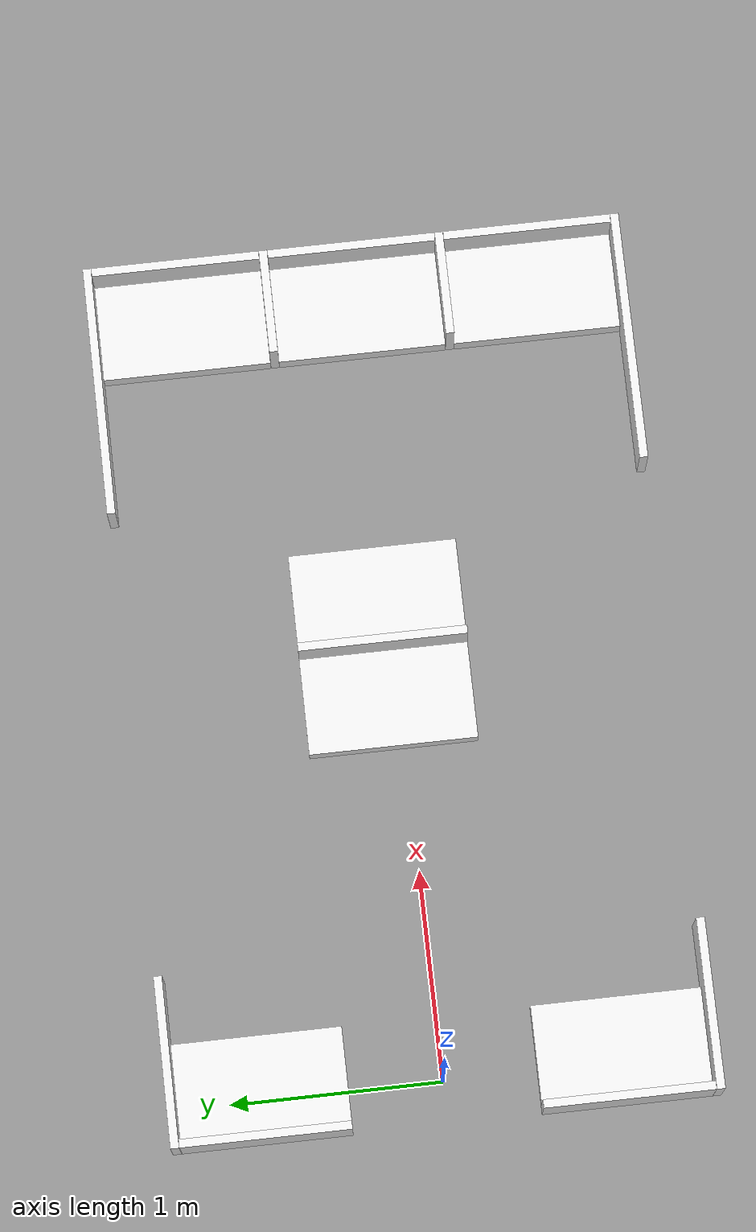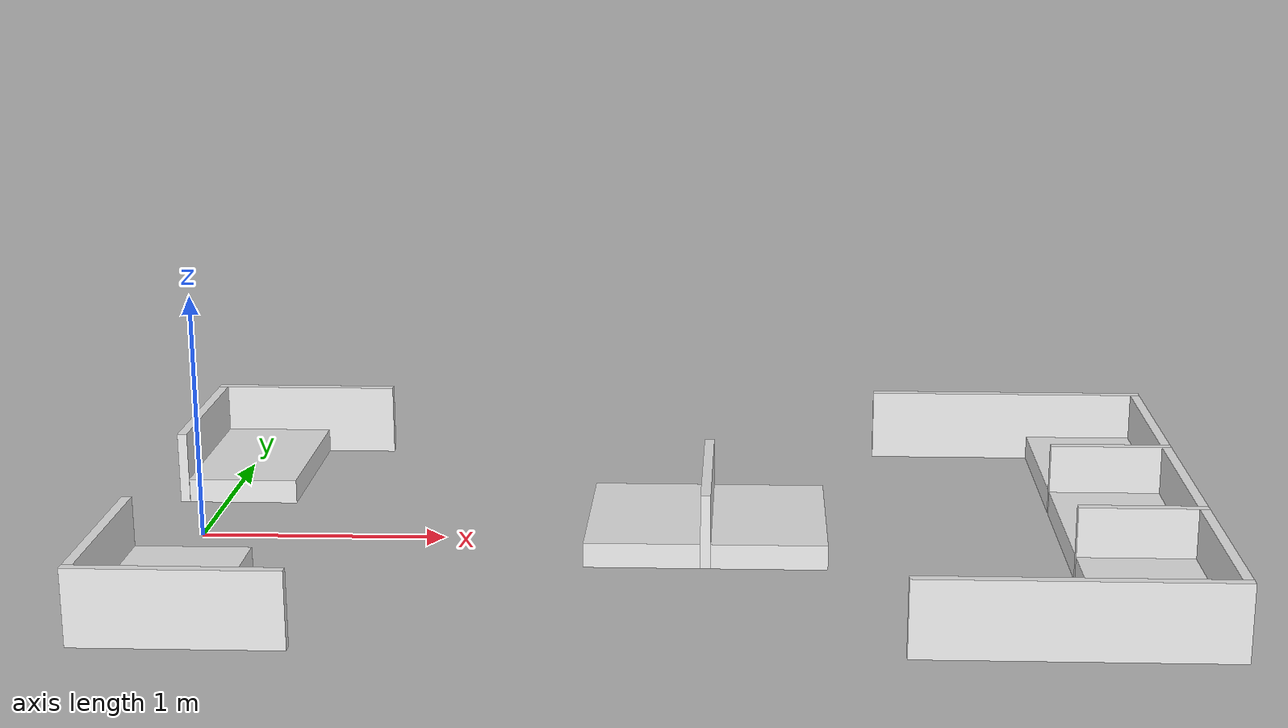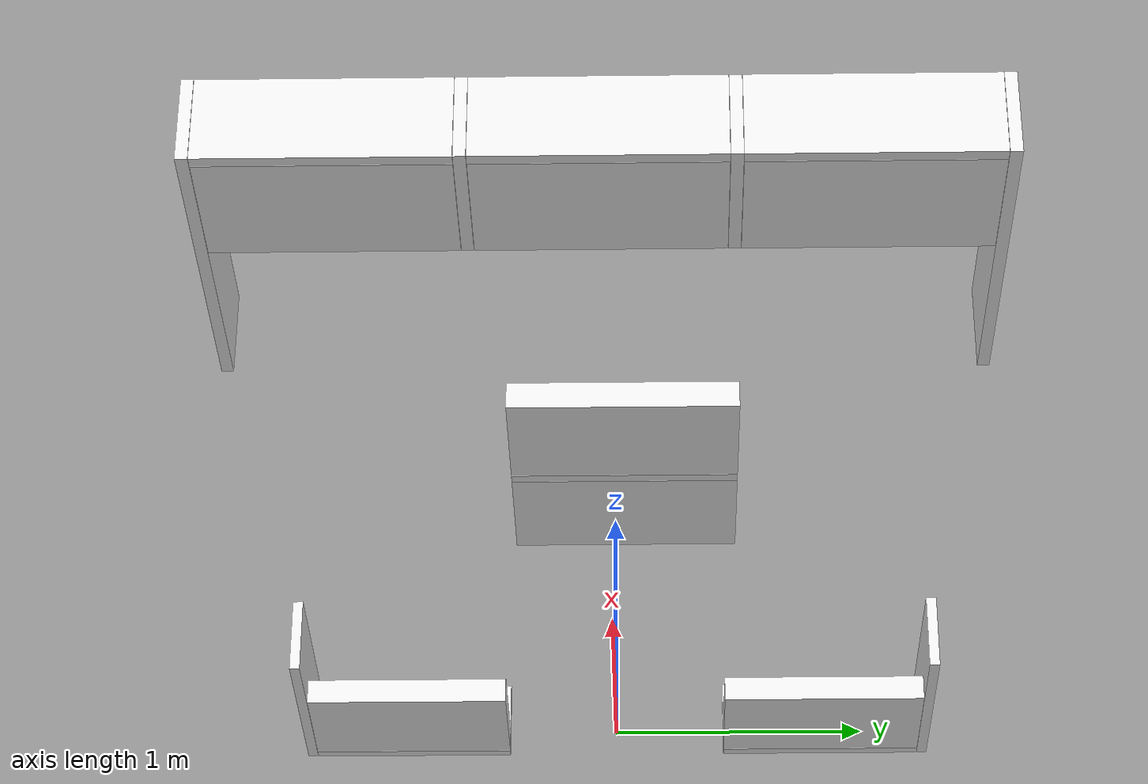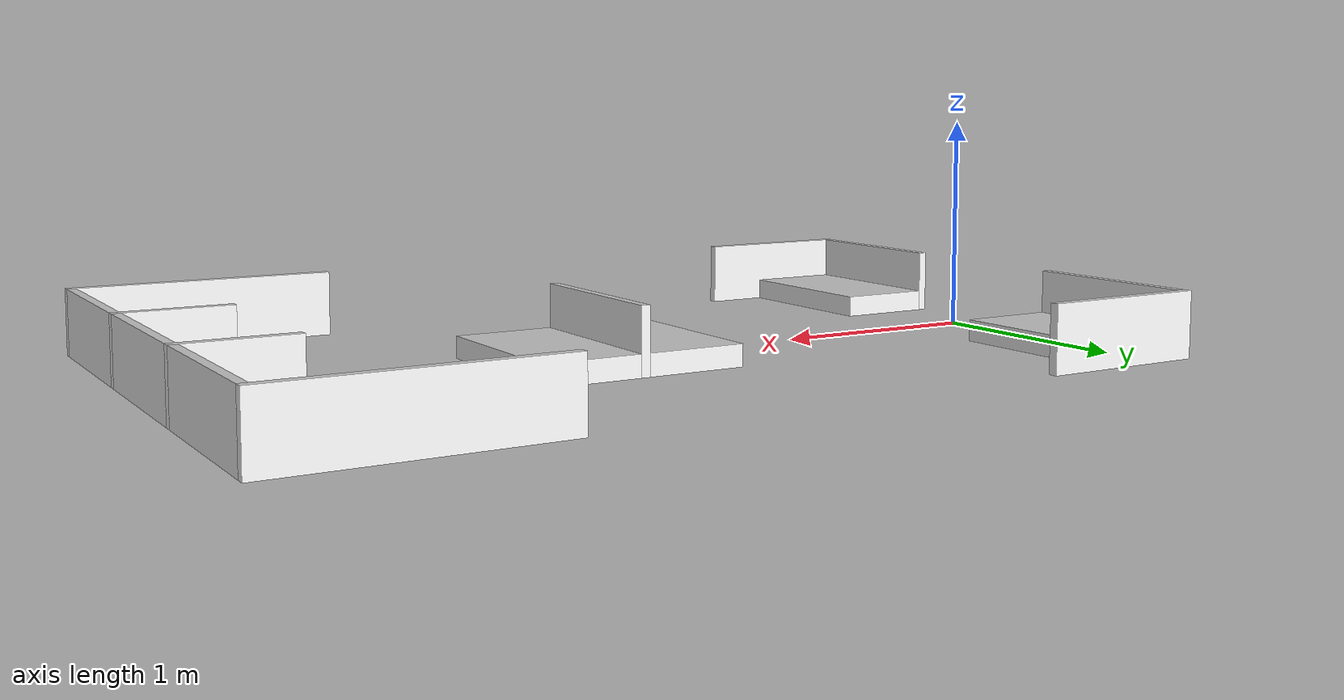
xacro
<?xml version="1.0"?>

<robot name="brsu-c025-config2">

  	<link name="origin">
    		<inertial>
      			<origin xyz="0 0 0" />
      			<mass value="0" />
      			<inertia  ixx="0" ixy="0"  ixz="0"  iyy="0"  iyz="0"  izz="0" />
    		</inertial>
    		<visual>
      			<origin xyz="0 0 0" />
      			<geometry>
					<box size="0 0 0" />
      			</geometry>
    		</visual>
			<collision>
      			<origin xyz="0 0 0"/>
				<geometry>
					<box size="0 0 0"/>
				</geometry>
    		</collision>
  	</link>

	<joint name="join1" type="fixed">
    		<origin xyz="3.983 0 0.15" rpy="0 0 0"/>
    		<parent link="origin"/>
    		<child link="wall_1"/>
  	</joint>

  	<link name="wall_1">
    		<inertial>
      			<origin xyz="0 0 0" />
      			<mass value="10.0" />
      			<inertia  ixx="1.0" ixy="0"  ixz="0"  iyy="1.0"  iyz="0"  izz="1.0" />
    		</inertial>
    		<visual>
      			<origin xyz="0 0 0"/>
      			<geometry>
					<box size="0.04 0.8 0.3" /> <!--wall 80, width = 4 cm, lenght = 80 cm, height = 30 cm-->
      			</geometry>
    		</visual>
			<collision>
      			<origin xyz="0 0 0"/>
				<geometry>
					<box size="0.04 0.8 0.3"/>
				</geometry>
    		</collision>
  	</link>

	<joint name="join2" type="fixed">
    		<origin xyz="0 0.842 0" rpy="0 0 0"/>
    		<parent link="wall_1"/>
    		<child link="wall_2"/>
  	</joint>

  	<link name="wall_2">
    		<inertial>
      			<origin xyz="0 0 0" />
      			<mass value="10.0" />
      			<inertia  ixx="1.0" ixy="0.0"  ixz="0.0"  iyy="1.0"  iyz="0.0"  izz="1.0" />
    		</inertial>
    		<visual>
      			<origin xyz="0 0 0"/>
      			<geometry>
					<box size="0.04 0.8 0.3" /> <!--wall 80, width = 4 cm, lenght = 80 cm, height = 30 cm-->
      			</geometry>
    		</visual>
			<collision>
      			<origin xyz="0 0 0"/>
				<geometry>
					<box size="0.04 0.8 0.3"/>
				</geometry>
    		</collision>
  	</link>

  	<joint name="join3" type="fixed">
    		<origin xyz="-0.580 0.421 0" rpy="0 0 1.570796"/>
    		<parent link="wall_2"/>
    		<child link="wall_3"/>
  	</joint>

  	<link name="wall_3">
    		<inertial>
      			<origin xyz="0 0 0" />
      			<mass value="10.0" />
      			<inertia  ixx="1.0" ixy="0.0"  ixz="0.0"  iyy="1.0"  iyz="0.0"  izz="1.0" />
    		</inertial>
    		<visual>
      			<origin xyz="0 0 0"/>
      			<geometry>
					<box size="0.04 1.2 0.3" /> <!--wall 120, width = 4 cm, lenght = 120 cm, height = 30 cm-->
      			</geometry>
    		</visual>
			<collision>
      			<origin xyz="0 0 0"/>
				<geometry>
					<box size="0.04 1.2 0.3"/>
				</geometry>
    		</collision>
  	</link>

  	<joint name="join4" type="fixed">
    		<origin xyz="0 1.201 0" rpy="0 0 0"/>
    		<parent link="wall_3"/>
    		<child link="wall_4"/>
  	</joint>

  	<link name="wall_4">
    		<inertial>
      			<origin xyz="0 0 0" />
      			<mass value="0" />
				<inertia  ixx="0" ixy="0"  ixz="0"  iyy="0"  iyz="0"  izz="0" />
      			<!--inertia  ixx="1.0" ixy="0.0"  ixz="0.0"  iyy="1.0"  iyz="0.0"  izz="1.0" /-->
    		</inertial>
    		<visual>
      			<origin xyz="0 0 0"/>
      			<geometry>
					<box size="0 0 0" /> <!--Insert 120 wall here for closed arena-->
					<!--box size="0.04 1.2 0.3" /--> <!--wall 120, width = 4 cm, lenght = 120 cm, height = 30 cm-->
      			</geometry>
    		</visual>
			<collision>
      			<origin xyz="0 0 0"/>
				<geometry>
					<box size="0 0 0" /> <!--Insert 120 wall here for closed arena-->
					<!--box size="0.04 0.8 0.3"/-->
				</geometry>
    		</collision>
  	</link>

  	<joint name="join5" type="fixed">
    		<origin xyz="0 1.201 0" rpy="0 0 0"/>
    		<parent link="wall_4"/>
    		<child link="wall_5"/>
  	</joint>

  	<link name="wall_5">
    		<inertial>
      			<origin xyz="0 0 0" />
      			<mass value="0" />
				<inertia  ixx="0" ixy="0"  ixz="0"  iyy="0"  iyz="0"  izz="0" />
      			<!--inertia  ixx="1.0" ixy="0.0"  ixz="0.0"  iyy="1.0"  iyz="0.0"  izz="1.0" /-->
    		</inertial>
    		<visual>
      			<origin xyz="0 0 0"/>
      			<geometry>
					<box size="0 0 0" /> <!--Insert 80 wall here for closed arena-->
					<!--box size="0.04 0.8 0.3" /--> <!--wall 80, width = 4 cm, lenght = 80 cm, height = 30 cm-->
      			</geometry>
    		</visual>
			<collision>
      			<origin xyz="0 0 0"/>
				<geometry>
					<box size="0 0 0" /> <!--Insert 80 wall here for closed arena-->
					<!--box size="0.04 0.8 0.3"/-->
				</geometry>
    		</collision>
  	</link>

  	<joint name="join6" type="fixed">
    		<origin xyz="0 0.801 0" rpy="0 0 0"/>
    		<parent link="wall_5"/>
    		<child link="wall_6"/>
  	</joint>

  	<link name="wall_6">
    		<inertial>
      			<origin xyz="0 0 0" />
      			<mass value="10.0" />
      			<inertia  ixx="1.0" ixy="0.0"  ixz="0.0"  iyy="1.0"  iyz="0.0"  izz="1.0" />
    		</inertial>
    		<visual>
      			<origin xyz="0 0 0"/>
      			<geometry>
					<box size="0.04 0.8 0.3" /> <!--wall 80, width = 4 cm, lenght = 80 cm, height = 30 cm-->
      			</geometry>
    		</visual>
			<collision>
      			<origin xyz="0 0 0"/>
				<geometry>
					<box size="0.04 0.8 0.3"/>
				</geometry>
    		</collision>
  	</link>

  	<joint name="join7" type="fixed">
			<origin xyz="-0.421 0.380 0" rpy="0 0 -1.570796"/>
    		<parent link="wall_6"/>
    		<child link="wall_7"/>
  	</joint>

  	<link name="wall_7">
    		<inertial>
      			<origin xyz="0 0 0" />
      			<mass value="10.0" />
      			<inertia  ixx="1.0" ixy="0.0"  ixz="0.0"  iyy="1.0"  iyz="0.0"  izz="1.0" />
    		</inertial>
    		<visual>
      			<origin xyz="0 0 0"/>
      			<geometry>
					<box size="0.04 0.8 0.3" /> <!--wall 80, width = 4 cm, lenght = 80 cm, height = 30 cm-->
      			</geometry>
    		</visual>
			<collision>
      			<origin xyz="0 0 0"/>
				<geometry>
					<box size="0.04 0.8 0.3"/>
				</geometry>
    		</collision>
  	</link>

  	<joint name="join8" type="fixed">
			<origin xyz="-0.421 0.129 -0.1" rpy="0 0 -1.570796"/>
    		<parent link="wall_6"/>
    		<child link="wall_8"/>
  	</joint>

  	<link name="wall_8">
    		<inertial>
      			<origin xyz="0 0 0" />
      			<mass value="10.0" />
      			<inertia  ixx="1.0" ixy="0.0"  ixz="0.0"  iyy="1.0"  iyz="0.0"  izz="1.0" />
    		</inertial>
    		<visual>
      			<origin xyz="0 0 0"/>
      			<geometry>
					<box size="0.46 0.8 0.1" /> <!--platform, width = 46 cm, lenght = 80 cm, height = 10 cm-->
      			</geometry>
    		</visual>
			<collision>
      			<origin xyz="0 0 0"/>
				<geometry>
					<box size="0.46 0.8 0.1"/>
				</geometry>
    		</collision>
  	</link>

  	<joint name="join9" type="fixed">
			<origin xyz="0 -0.842 0" rpy="0 0 0"/>
    		<parent link="wall_1"/>
    		<child link="wall_9"/>
  	</joint>

  	<link name="wall_9">
    		<inertial>
      			<origin xyz="0 0 0" />
      			<mass value="10.0" />
      			<inertia  ixx="1.0" ixy="0.0"  ixz="0.0"  iyy="1.0"  iyz="0.0"  izz="1.0" />
    		</inertial>
    		<visual>
      			<origin xyz="0 0 0"/>
      			<geometry>
					<box size="0.04 0.8 0.3" /> <!--wall 80, width = 4 cm, lenght = 80 cm, height = 30 cm-->
      			</geometry>
    		</visual>
			<collision>
      			<origin xyz="0 0 0"/>
				<geometry>
					<box size="0.04 0.8 0.3"/>
				</geometry>
    		</collision>
  	</link>

  	<joint name="join10" type="fixed">
			<origin xyz="-0.580 -0.421 0" rpy="0 0 1.570796"/>
    		<parent link="wall_9"/>
    		<child link="wall_10"/>
  	</joint>

  	<link name="wall_10">
    		<inertial>
      			<origin xyz="0 0 0" />
      			<mass value="10.0" />
      			<inertia  ixx="1.0" ixy="0.0"  ixz="0.0"  iyy="1.0"  iyz="0.0"  izz="1.0" />
    		</inertial>
    		<visual>
      			<origin xyz="0 0 0"/>
      			<geometry>
					<box size="0.04 1.2 0.3" /> <!--wall 120, width = 4 cm, lenght = 120 cm, height = 30 cm-->
      			</geometry>
    		</visual>
			<collision>
      			<origin xyz="0 0 0"/>
				<geometry>
					<box size="0.04 1.2 0.3"/>
				</geometry>
    		</collision>
  	</link>

  	<joint name="join11" type="fixed">
			<origin xyz="0 1.201 0" rpy="0 0 0"/>
    		<parent link="wall_10"/>
    		<child link="wall_11"/>
  	</joint>

  	<link name="wall_11">
    		<inertial>
      			<origin xyz="0 0 0" />
      			<mass value="0" />
				<inertia  ixx="0" ixy="0"  ixz="0"  iyy="0"  iyz="0"  izz="0" />
      			<!--inertia  ixx="1.0" ixy="0.0"  ixz="0.0"  iyy="1.0"  iyz="0.0"  izz="1.0" /-->
    		</inertial>
    		<visual>
      			<origin xyz="0 0 0"/>
      			<geometry>
					<box size="0 0 0" /> <!--Insert 120 wall here for closed arena-->
					<!--box size="0.04 1.2 0.3" /--> <!--wall 120, width = 4 cm, lenght = 120 cm, height = 30 cm-->
      			</geometry>
    		</visual>
			<collision>
      			<origin xyz="0 0 0"/>
				<geometry>
					<box size="0 0 0" /> <!--Insert 120 wall here for closed arena-->
					<!--box size="0.04 0.8 0.3"/-->
				</geometry>
    		</collision>
  	</link>

  	<joint name="join12" type="fixed">
			<origin xyz="0 1.201 0" rpy="0 0 0"/>
    		<parent link="wall_11"/>
    		<child link="wall_12"/>
  	</joint>

  	<link name="wall_12">
    		<inertial>
      			<origin xyz="0 0 0" />
      			<mass value="0" />
				<inertia  ixx="0" ixy="0"  ixz="0"  iyy="0"  iyz="0"  izz="0" />
      			<!--inertia  ixx="1.0" ixy="0.0"  ixz="0.0"  iyy="1.0"  iyz="0.0"  izz="1.0" /-->
    		</inertial>
    		<visual>
      			<origin xyz="0 0 0"/>
      			<geometry>
					<box size="0 0 0" /> <!--Insert 80 wall here for closed arena-->
					<!--box size="0.04 0.8 0.3" /--> <!--wall 80, width = 4 cm, lenght = 80 cm, height = 30 cm-->
      			</geometry>
    		</visual>
			<collision>
      			<origin xyz="0 0 0"/>
				<geometry>
					<box size="0 0 0" /> <!--Insert 80 wall here for closed arena-->
					<!--box size="0.04 0.8 0.3"/-->
				</geometry>
    		</collision>
  	</link>

  	<joint name="join13" type="fixed">
			<origin xyz="0 0.801 0" rpy="0 0 0"/>
    		<parent link="wall_12"/>
    		<child link="wall_13"/>
  	</joint>

  	<link name="wall_13">
    		<inertial>
      			<origin xyz="0 0 0" />
      			<mass value="10.0" />
      			<inertia  ixx="1.0" ixy="0.0"  ixz="0.0"  iyy="1.0"  iyz="0.0"  izz="1.0" />
    		</inertial>
    		<visual>
      			<origin xyz="0 0 0"/>
      			<geometry>
					<box size="0.04 0.8 0.3" /> <!--wall 80, width = 4 cm, lenght = 80 cm, height = 30 cm-->
      			</geometry>
    		</visual>
			<collision>
      			<origin xyz="0 0 0"/>
				<geometry>
					<box size="0.04 0.8 0.3"/>
				</geometry>
    		</collision>
  	</link>

  	<joint name="join14" type="fixed">
			<origin xyz="0.421 0.380 0" rpy="0 0 -1.570796"/>
    		<parent link="wall_13"/>
    		<child link="wall_14"/>
  	</joint>

  	<link name="wall_14">
    		<inertial>
      			<origin xyz="0 0 0" />
      			<mass value="10.0" />
      			<inertia  ixx="1.0" ixy="0.0"  ixz="0.0"  iyy="1.0"  iyz="0.0"  izz="1.0" />
    		</inertial>
    		<visual>
      			<origin xyz="0 0 0"/>
      			<geometry>
					<box size="0.04 0.8 0.3" /> <!--wall 80, width = 4 cm, lenght = 80 cm, height = 30 cm-->
      			</geometry>
    		</visual>
			<collision>
      			<origin xyz="0 0 0"/>
				<geometry>
					<box size="0.04 0.8 0.3"/>
				</geometry>
    		</collision>
  	</link>

  	<joint name="join15" type="fixed">
			<origin xyz="0.421 0.129 -0.1" rpy="0 0 -1.570796"/>
    		<parent link="wall_13"/>
    		<child link="wall_15"/>
  	</joint>

  	<link name="wall_15">
    		<inertial>
      			<origin xyz="0 0 0" />
      			<mass value="10.0" />
      			<inertia  ixx="1.0" ixy="0.0"  ixz="0.0"  iyy="1.0"  iyz="0.0"  izz="1.0" />
    		</inertial>
    		<visual>
      			<origin xyz="0 0 0"/>
      			<geometry>
					<box size="0.46 0.8 0.1" /> <!--platform, width = 46 cm, lenght = 80 cm, height = 10 cm-->
      			</geometry>
    		</visual>
			<collision>
      			<origin xyz="0 0 0"/>
				<geometry>
					<box size="0.46 0.8 0.1"/>
				</geometry>
    		</collision>
  	</link>

  	<joint name="join16" type="fixed">
			<origin xyz="-0.251 0 -0.1" rpy="0 0 0"/>
    		<parent link="wall_1"/>
    		<child link="wall_16"/>
  	</joint>

  	<link name="wall_16">
    		<inertial>
      			<origin xyz="0 0 0" />
      			<mass value="10.0" />
      			<inertia  ixx="1.0" ixy="0.0"  ixz="0.0"  iyy="1.0"  iyz="0.0"  izz="1.0" />
    		</inertial>
    		<visual>
      			<origin xyz="0 0 0"/>
      			<geometry>
					<box size="0.46 0.8 0.1" /> <!--platform, width = 46 cm, lenght = 80 cm, height = 10 cm-->
      			</geometry>
    		</visual>
			<collision>
      			<origin xyz="0 0 0"/>
				<geometry>
					<box size="0.46 0.8 0.1"/>
				</geometry>
    		</collision>
  	</link>

  	<joint name="join17" type="fixed">
			<origin xyz="0 0.842 0" rpy="0 0 0"/>
    		<parent link="wall_16"/>
    		<child link="wall_17"/>
  	</joint>

  	<link name="wall_17">
    		<inertial>
      			<origin xyz="0 0 0" />
      			<mass value="10.0" />
      			<inertia  ixx="1.0" ixy="0.0"  ixz="0.0"  iyy="1.0"  iyz="0.0"  izz="1.0" />
    		</inertial>
    		<visual>
      			<origin xyz="0 0 0"/>
      			<geometry>
					<box size="0.46 0.8 0.1" /> <!--platform, width = 46 cm, lenght = 80 cm, height = 10 cm-->
      			</geometry>
    		</visual>
			<collision>
      			<origin xyz="0 0 0"/>
				<geometry>
					<box size="0.46 0.8 0.1"/>
				</geometry>
    		</collision>
  	</link>

  	<joint name="join18" type="fixed">
			<origin xyz="0 -1.684 0" rpy="0 0 0"/>
    		<parent link="wall_17"/>
    		<child link="wall_18"/>
  	</joint>

  	<link name="wall_18">
    		<inertial>
      			<origin xyz="0 0 0" />
      			<mass value="10.0" />
      			<inertia  ixx="1.0" ixy="0.0"  ixz="0.0"  iyy="1.0"  iyz="0.0"  izz="1.0" />
    		</inertial>
    		<visual>
      			<origin xyz="0 0 0"/>
      			<geometry>
					<box size="0.46 0.8 0.1" /> <!--platform, width = 46 cm, lenght = 80 cm, height = 10 cm-->
      			</geometry>
    		</visual>
			<collision>
      			<origin xyz="0 0 0"/>
				<geometry>
					<box size="0.46 0.8 0.1"/>
				</geometry>
    		</collision>
  	</link>

  	<joint name="join19" type="fixed">
			<origin xyz="-0.230 0.421 0" rpy="0 0 1.570796"/>
    		<parent link="wall_1"/>
    		<child link="wall_19"/>
  	</joint>

  	<link name="wall_19">
    		<inertial>
      			<origin xyz="0 0 0" />
      			<mass value="10.0" />
      			<inertia  ixx="1.0" ixy="0.0"  ixz="0.0"  iyy="1.0"  iyz="0.0"  izz="1.0" />
    		</inertial>
    		<visual>
      			<origin xyz="0 0 0"/>
      			<geometry>
					<box size="0.04 0.5 0.3" /> <!--wall 50, width = 4 cm, lenght = 50 cm, height = 30 cm-->
      			</geometry>
    		</visual>
		<collision>
      			<origin xyz="0 0 0"/>
				<geometry>
					<box size="0.04 0.5 0.3"/>
				</geometry>
    		</collision>
  	</link>

  	<joint name="join20" type="fixed">
			<origin xyz="-0.842 0 0" rpy="0 0 0"/>
    		<parent link="wall_19"/>
    		<child link="wall_20"/>
  	</joint>

  	<link name="wall_20">
    		<inertial>
      			<origin xyz="0 0 0" />
      			<mass value="10.0" />
      			<inertia  ixx="1.0" ixy="0.0"  ixz="0.0"  iyy="1.0"  iyz="0.0"  izz="1.0" />
    		</inertial>
    		<visual>
      			<origin xyz="0 0 0"/>
      			<geometry>
					<box size="0.04 0.5 0.3" /> <!--wall 50, width = 4 cm, lenght = 50 cm, height = 30 cm-->
      			</geometry>
    		</visual>
			<collision>
      			<origin xyz="0 0 0"/>
				<geometry>
					<box size="0.04 0.5 0.3"/>
				</geometry>
    		</collision>
  	</link>

  	<joint name="join21" type="fixed">
			<origin xyz="-1.912 0.057 0" rpy="0 0 0"/>
    		<parent link="wall_1"/>
    		<child link="wall_21"/>
  	</joint>

  	<link name="wall_21">
    		<inertial>
      			<origin xyz="0 0 0" />
      			<mass value="10.0" />
      			<inertia  ixx="1.0" ixy="0.0"  ixz="0.0"  iyy="1.0"  iyz="0.0"  izz="1.0" />
    		</inertial>
    		<visual>
      			<origin xyz="0 0 0"/>
      			<geometry>
					<box size="0.04 0.8 0.3" /> <!--wall 80, width = 4 cm, lenght = 80 cm, height = 30 cm-->
      			</geometry>
    		</visual>
			<collision>
      			<origin xyz="0 0 0"/>
				<geometry>
					<box size="0.04 0.8 0.3"/>
				</geometry>
    		</collision>
  	</link>

  	<joint name="join22" type="fixed">
			<origin xyz="-0.251 0 -0.1" rpy="0 0 0"/>
    		<parent link="wall_21"/>
    		<child link="wall_22"/>
  	</joint>

  	<link name="wall_22">
    		<inertial>
      			<origin xyz="0 0 0" />
      			<mass value="10.0" />
      			<inertia  ixx="1.0" ixy="0.0"  ixz="0.0"  iyy="1.0"  iyz="0.0"  izz="1.0" />
    		</inertial>
    		<visual>
      			<origin xyz="0 0 0"/>
      			<geometry>
					<box size="0.46 0.8 0.1" /> <!--platform, width = 46 cm, lenght = 80 cm, height = 10 cm-->
      			</geometry>
    		</visual>
			<collision>
      			<origin xyz="0 0 0"/>
				<geometry>
					<box size="0.46 0.8 0.1"/>
				</geometry>
    		</collision>
  	</link>

  	<joint name="join23" type="fixed">
			<origin xyz="0.502 0 0" rpy="0 0 0"/>
    		<parent link="wall_22"/>
    		<child link="wall_23"/>
  	</joint>

  	<link name="wall_23">
    		<inertial>
      			<origin xyz="0 0 0" />
      			<mass value="10.0" />
      			<inertia  ixx="1.0" ixy="0.0"  ixz="0.0"  iyy="1.0"  iyz="0.0"  izz="1.0" />
    		</inertial>
    		<visual>
      			<origin xyz="0 0 0"/>
      			<geometry>
					<box size="0.46 0.8 0.1" /> <!--platform, width = 46 cm, lenght = 80 cm, height = 10 cm-->
      			</geometry>
    		</visual>
			<collision>
      			<origin xyz="0 0 0"/>
				<geometry>
					<box size="0.46 0.8 0.1"/>
				</geometry>
    		</collision>
  	</link>

  <gazebo reference="wall_1">
	<material>Gazebo/White</material>
	<selfCollide>false</selfCollide>
  </gazebo>
  <gazebo reference="wall_2">
	<material>Gazebo/White</material>
	<selfCollide>false</selfCollide>
  </gazebo>
  <gazebo reference="wall_3">
	<material>Gazebo/White</material>
	<selfCollide>false</selfCollide>
  </gazebo>
  <gazebo reference="wall_4">
	<material>Gazebo/White</material>
	<selfCollide>false</selfCollide>
  </gazebo>
  <gazebo reference="wall_5">
	<material>Gazebo/White</material>
	<selfCollide>false</selfCollide>
  </gazebo>
  <gazebo reference="wall_6">
	<material>Gazebo/White</material>
	<selfCollide>false</selfCollide>
  </gazebo>
  <gazebo reference="wall_7">
	<material>Gazebo/White</material>
	<selfCollide>false</selfCollide>
  </gazebo>
  <gazebo reference="wall_8">
	<material>Gazebo/White</material>
	<selfCollide>false</selfCollide>
  </gazebo>
  <gazebo reference="wall_9">
	<material>Gazebo/White</material>
	<selfCollide>false</selfCollide>
  </gazebo>
  <gazebo reference="wall_10">
	<material>Gazebo/White</material>
	<selfCollide>false</selfCollide>
  </gazebo>
  <gazebo reference="wall_11">
	<material>Gazebo/White</material>
	<selfCollide>false</selfCollide>
  </gazebo>
  <gazebo reference="wall_12">
	<material>Gazebo/White</material>
	<selfCollide>false</selfCollide>
  </gazebo>
  <gazebo reference="wall_13">
	<material>Gazebo/White</material>
	<selfCollide>false</selfCollide>
  </gazebo>
  <gazebo reference="wall_14">
	<material>Gazebo/White</material>
	<selfCollide>false</selfCollide>
  </gazebo>
  <gazebo reference="wall_15">
	<material>Gazebo/White</material>
	<selfCollide>false</selfCollide>
  </gazebo>
  <gazebo reference="wall_16">
	<material>Gazebo/White</material>
	<selfCollide>false</selfCollide>
  </gazebo>
  <gazebo reference="wall_17">
	<material>Gazebo/White</material>
	<selfCollide>false</selfCollide>
  </gazebo>
  <gazebo reference="wall_18">
	<material>Gazebo/White</material>
	<selfCollide>false</selfCollide>
  </gazebo>
  <gazebo reference="wall_19">
	<material>Gazebo/White</material>
	<selfCollide>false</selfCollide>
  </gazebo>
  <gazebo reference="wall_20">
	<material>Gazebo/White</material>
	<selfCollide>false</selfCollide>
  </gazebo>
  <gazebo reference="wall_21">
	<material>Gazebo/White</material>
	<selfCollide>false</selfCollide>
  </gazebo>
  <gazebo reference="wall_22">
	<material>Gazebo/White</material>
	<selfCollide>false</selfCollide>
  </gazebo>
  <gazebo reference="wall_23">
	<material>Gazebo/White</material>
	<selfCollide>false</selfCollide>
  </gazebo>

</robot>
